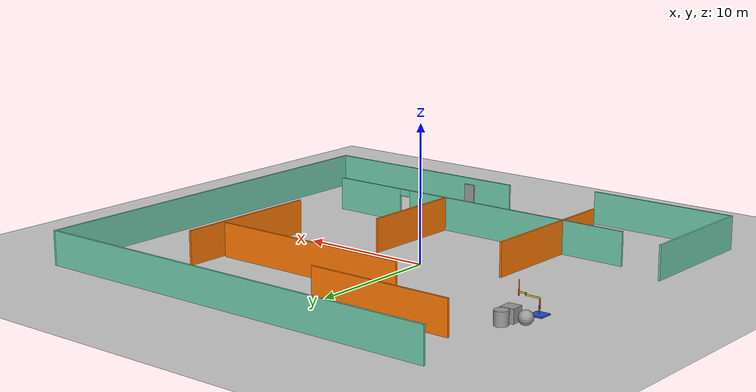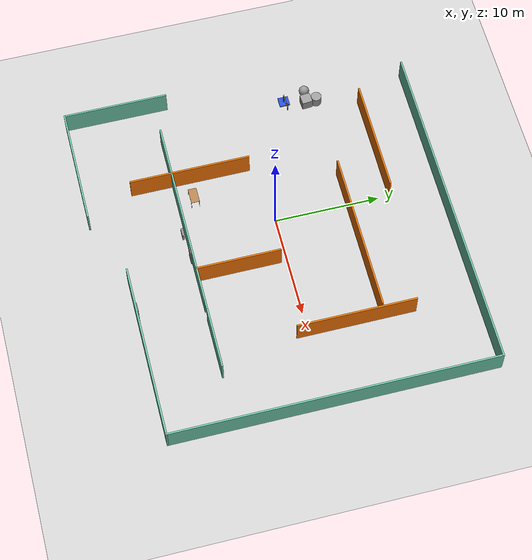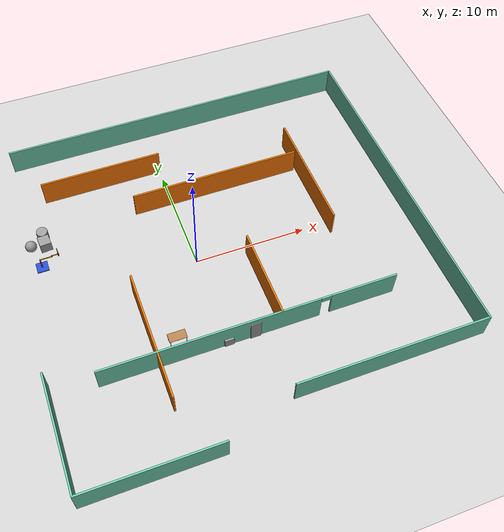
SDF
<sdf version="1.7">
 <world name="default">
  <light name="sun" type="directional">
   <pose>0 0 10 0 -0 0</pose>
   <diffuse>0.8 0.8 0.8 1</diffuse>
   <specular>0.2 0.2 0.2 1</specular>
   <attenuation>
    <range>1000</range>
    <constant>0.9</constant>
    <linear>0.01</linear>
    <quadratic>0.001</quadratic>
   </attenuation>
   <direction>-0.5 0.1 -0.9</direction>
   <spot><inner_angle>0</inner_angle><outer_angle>0</outer_angle><falloff>0</falloff></spot>
  </light>
  <model name="ground_plane">
   <static>1</static>
   <link name="link">
    <collision name="collision">
     <geometry><plane><normal>0 0 1</normal><size>100 100</size></plane></geometry>
     <surface><friction><ode><mu>100</mu><mu2>50</mu2></ode></friction></surface>
    </collision>
    <visual name="visual">
     <cast_shadows>0</cast_shadows>
     <geometry><plane><normal>0 0 1</normal><size>100 100</size></plane></geometry>
     <material>
      <script><uri>file://media/materials/scripts/gazebo.material</uri><name>Gazebo/Grey</name></script>
     </material>
    </visual>
   </link>
  </model>
  <gravity>0 0 -9.8</gravity>
  <magnetic_field>6e-06 2.3e-05 -4.2e-05</magnetic_field>
  <atmosphere type="adiabatic"/>
  <physics type="ode">
   <max_step_size>0.001</max_step_size>
   <real_time_factor>1</real_time_factor>
   <real_time_update_rate>1000</real_time_update_rate>
  </physics>
  <scene><ambient>0.4 0.4 0.4 1</ambient><background>0.7 0.7 0.7 1</background><shadows>1</shadows></scene>
  <audio><device>default</device></audio>
  <spherical_coordinates>
   <surface_model>EARTH_WGS84</surface_model>
   <latitude_deg>32.215470098666664</latitude_deg>
   <longitude_deg>119.50065134233334</longitude_deg>
   <elevation>488</elevation>
   <heading_deg>180</heading_deg>
  </spherical_coordinates>
  <model name="Untitled222">
   <pose>2.41059 -0.583412 0 0 -0 0</pose>
   <link name="Door_1">
    <collision name="Door_1_Collision">
     <geometry><box><size>0.9 0.17 2</size></box></geometry>
     <pose>0 0 1 0 -0 0</pose>
    </collision>
    <visual name="Door_1_Visual">
     <pose>0 0 1 0 -0 0</pose>
     <geometry><box><size>0.9 0.17 2</size></box></geometry>
     <material>
      <script><uri>file://media/materials/scripts/gazebo.material</uri><name>Gazebo/Grey</name></script>
     </material>
    </visual>
    <pose>4.24902 -14.0344 0 0 -0 0</pose>
   </link>
   <link name="Door_3">
    <collision name="Door_3_Collision">
     <geometry><box><size>0.9 0.17 2</size></box></geometry>
     <pose>0 0 1 0 -0 0</pose>
    </collision>
    <visual name="Door_3_Visual">
     <pose>0 0 1 0 -0 0</pose>
     <geometry><box><size>0.9 0.17 2</size></box></geometry>
     <material>
      <script><uri>file://media/materials/scripts/gazebo.material</uri><name>Gazebo/Grey</name></script>
     </material>
    </visual>
    <pose>-0.30773 -8.01293 0 0 -0 0</pose>
   </link>
   <link name="Wall_21">
    <collision name="Wall_21_Collision">
     <geometry><box><size>32.5 0.15 2.5</size></box></geometry>
     <pose>0 0 1.25 0 -0 0</pose>
    </collision>
    <visual name="Wall_21_Visual">
     <pose>0 0 1.25 0 -0 0</pose>
     <geometry><box><size>32.5 0.15 2.5</size></box></geometry>
     <material>
      <script><uri>file://media/materials/scripts/gazebo.material</uri><name>Gazebo/Grey</name></script>
      <ambient>0.435294 0.796078 0.67451 1</ambient>
     </material>
     <meta><layer>0</layer></meta>
    </visual>
    <pose>0.976447 16.4796 0 0 -0 0</pose>
   </link>
   <link name="Wall_22">
    <collision name="Wall_22_Collision">
     <geometry><box><size>30.75 0.15 2.5</size></box></geometry>
     <pose>0 0 1.25 0 -0 0</pose>
    </collision>
    <visual name="Wall_22_Visual">
     <pose>0 0 1.25 0 -0 0</pose>
     <geometry><box><size>30.75 0.15 2.5</size></box></geometry>
     <material>
      <script><uri>file://media/materials/scripts/gazebo.material</uri><name>Gazebo/Grey</name></script>
      <ambient>0.435294 0.796078 0.67451 1</ambient>
     </material>
     <meta><layer>0</layer></meta>
    </visual>
    <pose>17.1514 1.17963 0 0 -0 -1.5708</pose>
   </link>
   <link name="Wall_23">
    <collision name="Wall_23_Collision">
     <geometry><box><size>16.75 0.15 2.5</size></box></geometry>
     <pose>0 0 1.25 0 -0 0</pose>
    </collision>
    <visual name="Wall_23_Visual">
     <pose>0 0 1.25 0 -0 0</pose>
     <geometry><box><size>16.75 0.15 2.5</size></box></geometry>
     <material>
      <script><uri>file://media/materials/scripts/gazebo.material</uri><name>Gazebo/Grey</name></script>
      <ambient>0.435294 0.796078 0.67451 1</ambient>
     </material>
     <meta><layer>0</layer></meta>
    </visual>
    <pose>8.85145 -14.1204 0 0 -0 3.14159</pose>
   </link>
   <link name="Wall_25">
    <pose>-0.652029 -7.93156 0 0 -0 0</pose>
    <visual name="Wall_25_Visual_0">
     <pose>-3.37645 0 1.25 0 -0 0</pose>
     <geometry><box><size>18.7471 0.15 2.5</size></box></geometry>
     <material>
      <script><uri>file://media/materials/scripts/gazebo.material</uri><name>Gazebo/Grey</name></script>
      <ambient>0.435294 0.796078 0.67451 1</ambient>
     </material>
     <meta><layer>0</layer></meta>
    </visual>
    <collision name="Wall_25_Collision_0">
     <geometry><box><size>18.7471 0.15 2.5</size></box></geometry>
     <pose>-3.37645 0 1.25 0 -0 0</pose>
    </collision>
    <visual name="Wall_25_Visual_1">
     <pose>9.82355 0 1.25 0 -0 0</pose>
     <geometry><box><size>5.8529 0.15 2.5</size></box></geometry>
     <material>
      <script><uri>file://media/materials/scripts/gazebo.material</uri><name>Gazebo/Grey</name></script>
      <ambient>0.435294 0.796078 0.67451 1</ambient>
     </material>
     <meta><layer>0</layer></meta>
    </visual>
    <collision name="Wall_25_Collision_1">
     <geometry><box><size>5.8529 0.15 2.5</size></box></geometry>
     <pose>9.82355 0 1.25 0 -0 0</pose>
    </collision>
    <visual name="Wall_25_Visual_2">
     <pose>6.4471 0 2.25 0 -0 0</pose>
     <geometry><box><size>0.9 0.15 0.5</size></box></geometry>
     <material>
      <script><uri>file://media/materials/scripts/gazebo.material</uri><name>Gazebo/Grey</name></script>
      <ambient>0.435294 0.796078 0.67451 1</ambient>
     </material>
     <meta><layer>0</layer></meta>
    </visual>
    <collision name="Wall_25_Collision_2">
     <geometry><box><size>0.9 0.15 0.5</size></box></geometry>
     <pose>6.4471 0 2.25 0 -0 0</pose>
    </collision>
   </link>
   <link name="Wall_27">
    <collision name="Wall_27_Collision">
     <geometry><box><size>8 0.15 2.5</size></box></geometry>
     <pose>0 0 1.25 0 -0 0</pose>
    </collision>
    <visual name="Wall_27_Visual">
     <pose>0 0 1.25 0 -0 0</pose>
     <geometry><box><size>8 0.15 2.5</size></box></geometry>
     <material>
      <script><uri>file://media/materials/scripts/gazebo.material</uri><name>Gazebo/Grey</name></script>
      <ambient>0.996078 0.47451 0.0196078 1</ambient>
     </material>
     <meta><layer>0</layer></meta>
    </visual>
    <pose>1.97065 -3.96361 0 0 -0 -1.5708</pose>
   </link>
   <link name="Wall_29">
    <collision name="Wall_29_Collision">
     <geometry><box><size>11.5 0.15 2.5</size></box></geometry>
     <pose>0 0 1.25 0 -0 0</pose>
    </collision>
    <visual name="Wall_29_Visual">
     <pose>0 0 1.25 0 -0 0</pose>
     <geometry><box><size>11.5 0.15 2.5</size></box></geometry>
     <material>
      <script><uri>file://media/materials/scripts/gazebo.material</uri><name>Gazebo/Grey</name></script>
      <ambient>0.996078 0.47451 0.0196078 1</ambient>
     </material>
     <meta><layer>0</layer></meta>
    </visual>
    <pose>-8.44479 -6.20183 0 0 -0 -1.5708</pose>
   </link>
   <link name="Wall_31">
    <collision name="Wall_31_Collision">
     <geometry><box><size>10 0.15 2.5</size></box></geometry>
     <pose>0 0 1.25 0 -0 0</pose>
    </collision>
    <visual name="Wall_31_Visual">
     <pose>0 0 1.25 0 -0 0</pose>
     <geometry><box><size>10 0.15 2.5</size></box></geometry>
     <material>
      <script><uri>file://media/materials/scripts/gazebo.material</uri><name>Gazebo/Grey</name></script>
      <ambient>0.435294 0.796078 0.67451 1</ambient>
     </material>
     <meta><layer>0</layer></meta>
    </visual>
    <pose>-17.1514 -11.5546 0 0 -0 -1.5708</pose>
   </link>
   <link name="Wall_32">
    <collision name="Wall_32_Collision">
     <geometry><box><size>11.5 0.15 2.5</size></box></geometry>
     <pose>0 0 1.25 0 -0 0</pose>
    </collision>
    <visual name="Wall_32_Visual">
     <pose>0 0 1.25 0 -0 0</pose>
     <geometry><box><size>11.5 0.15 2.5</size></box></geometry>
     <material>
      <script><uri>file://media/materials/scripts/gazebo.material</uri><name>Gazebo/Grey</name></script>
      <ambient>0.435294 0.796078 0.67451 1</ambient>
     </material>
     <meta><layer>0</layer></meta>
    </visual>
    <pose>-11.4764 -16.4796 0 0 -0 0</pose>
   </link>
   <link name="Wall_34">
    <collision name="Wall_34_Collision">
     <geometry><box><size>11 0.15 2.5</size></box></geometry>
     <pose>0 0 1.25 0 -0 0</pose>
    </collision>
    <visual name="Wall_34_Visual">
     <pose>0 0 1.25 0 -0 0</pose>
     <geometry><box><size>11 0.15 2.5</size></box></geometry>
     <material>
      <script><uri>file://media/materials/scripts/gazebo.material</uri><name>Gazebo/Grey</name></script>
      <ambient>0.996078 0.47451 0.0196078 1</ambient>
     </material>
     <meta><layer>0</layer></meta>
    </visual>
    <pose>-7.82066 11.6788 0 0 -0 0</pose>
   </link>
   <link name="Wall_36">
    <collision name="Wall_36_Collision">
     <geometry><box><size>15.5 0.15 2.5</size></box></geometry>
     <pose>0 0 1.25 0 -0 0</pose>
    </collision>
    <visual name="Wall_36_Visual">
     <pose>0 0 1.25 0 -0 0</pose>
     <geometry><box><size>15.5 0.15 2.5</size></box></geometry>
     <material>
      <script><uri>file://media/materials/scripts/gazebo.material</uri><name>Gazebo/Grey</name></script>
      <ambient>0.996078 0.47451 0.0196078 1</ambient>
     </material>
     <meta><layer>0</layer></meta>
    </visual>
    <pose>1.83407 7.52886 0 0 -0 0</pose>
   </link>
   <link name="Wall_38">
    <collision name="Wall_38_Collision">
     <geometry><box><size>11.25 0.15 2.5</size></box></geometry>
     <pose>0 0 1.25 0 -0 0</pose>
    </collision>
    <visual name="Wall_38_Visual">
     <pose>0 0 1.25 0 -0 0</pose>
     <geometry><box><size>11.25 0.15 2.5</size></box></geometry>
     <material>
      <script><uri>file://media/materials/scripts/gazebo.material</uri><name>Gazebo/Grey</name></script>
      <ambient>0.996078 0.47451 0.0196078 1</ambient>
     </material>
     <meta><layer>0</layer></meta>
    </visual>
    <pose>9.8636 5.07094 0 0 -0 -1.5708</pose>
   </link>
   <link name="Window_2">
    <collision name="Window_2_Collision">
     <geometry><box><size>0.8 0.17 0.8</size></box></geometry>
     <pose>0 0 0.4 0 -0 0</pose>
    </collision>
    <visual name="Window_2_Visual">
     <pose>0 0 0.4 0 -0 0</pose>
     <geometry><box><size>0.8 0.17 0.8</size></box></geometry>
     <material>
      <script><uri>file://media/materials/scripts/gazebo.material</uri><name>Gazebo/Grey</name></script>
     </material>
    </visual>
    <pose>-2.66748 -8.25704 0.5 0 -0 0</pose>
   </link>
   <static>1</static>
  </model>
  <model name="unit_cylinder">
   <pose>-11.9768 7.13366 0.499992 -3e-06 -4e-06 0.013015</pose>
   <link name="link">
    <inertial>
     <mass>1</mass>
     <inertia><ixx>0.145833</ixx><ixy>0</ixy><ixz>0</ixz><iyy>0.145833</iyy><iyz>0</iyz><izz>0.125</izz></inertia>
    </inertial>
    <collision name="collision">
     <geometry><cylinder><radius>0.5</radius><length>1</length></cylinder></geometry>
    </collision>
    <visual name="visual">
     <geometry><cylinder><radius>0.5</radius><length>1</length></cylinder></geometry>
     <material>
      <script><name>Gazebo/Grey</name><uri>file://media/materials/scripts/gazebo.material</uri></script>
     </material>
    </visual>
   </link>
  </model>
  <model name="unit_sphere">
   <pose>-13.2033 6.23711 0.5 0 -0 0</pose>
   <link name="link">
    <inertial>
     <mass>1</mass>
     <inertia><ixx>0.1</ixx><ixy>0</ixy><ixz>0</ixz><iyy>0.1</iyy><iyz>0</iyz><izz>0.1</izz></inertia>
    </inertial>
    <collision name="collision"><geometry><sphere><radius>0.5</radius></sphere></geometry></collision>
    <visual name="visual">
     <geometry><sphere><radius>0.5</radius></sphere></geometry>
     <material>
      <script><name>Gazebo/Grey</name><uri>file://media/materials/scripts/gazebo.material</uri></script>
     </material>
    </visual>
   </link>
  </model>
  <model name="unit_box">
   <pose>-11.9904 6.12986 0.5 0 -0 0.073842</pose>
   <link name="link">
    <inertial>
     <mass>1</mass>
     <inertia>
      <ixx>0.166667</ixx>
      <ixy>0</ixy>
      <ixz>0</ixz>
      <iyy>0.166667</iyy>
      <iyz>0</iyz>
      <izz>0.166667</izz>
     </inertia>
    </inertial>
    <collision name="collision"><geometry><box><size>1 1 1</size></box></geometry></collision>
    <visual name="visual">
     <geometry><box><size>1 1 1</size></box></geometry>
     <material>
      <script><name>Gazebo/Grey</name><uri>file://media/materials/scripts/gazebo.material</uri></script>
     </material>
    </visual>
   </link>
  </model>
  <model name="simple_arm">
   <link name="arm_base">
    <inertial>
     <pose>0 0 0.00099 0 -0 0</pose>
     <inertia><ixx>1.11</ixx><ixy>0</ixy><ixz>0</ixz><iyy>100.11</iyy><iyz>0</iyz><izz>1.01</izz></inertia>
     <mass>101</mass>
    </inertial>
    <collision name="arm_base_geom">
     <pose>0 0 0.05 0 -0 0</pose>
     <geometry><box><size>1 1 0.1</size></box></geometry>
    </collision>
    <visual name="arm_base_geom_visual">
     <pose>0 0 0.05 0 -0 0</pose>
     <geometry><box><size>1 1 0.1</size></box></geometry>
     <material>
      <script><uri>file://media/materials/scripts/gazebo.material</uri><name>Gazebo/Blue</name></script>
     </material>
    </visual>
    <collision name="arm_base_geom_arm_trunk">
     <pose>0 0 0.6 0 -0 0</pose>
     <geometry><cylinder><radius>0.05</radius><length>1</length></cylinder></geometry>
    </collision>
    <visual name="arm_base_geom_arm_trunk_visual">
     <pose>0 0 0.6 0 -0 0</pose>
     <geometry><cylinder><radius>0.05</radius><length>1</length></cylinder></geometry>
     <material>
      <script><uri>file://media/materials/scripts/gazebo.material</uri><name>Gazebo/Red</name></script>
     </material>
    </visual>
   </link>
   <link name="arm_shoulder_pan">
    <pose>0 0 1.1 0 -0 0</pose>
    <inertial>
     <pose>0.045455 0 0 0 -0 0</pose>
     <inertia><ixx>0.011</ixx><ixy>0</ixy><ixz>0</ixz><iyy>0.0225</iyy><iyz>0</iyz><izz>0.0135</izz></inertia>
     <mass>1.1</mass>
    </inertial>
    <collision name="arm_shoulder_pan_geom">
     <pose>0 0 0.05 0 -0 0</pose>
     <geometry><cylinder><radius>0.05</radius><length>0.1</length></cylinder></geometry>
    </collision>
    <visual name="arm_shoulder_pan_geom_visual">
     <pose>0 0 0.05 0 -0 0</pose>
     <geometry><cylinder><radius>0.05</radius><length>0.1</length></cylinder></geometry>
     <material>
      <script><uri>file://media/materials/scripts/gazebo.material</uri><name>Gazebo/Yellow</name></script>
     </material>
    </visual>
    <collision name="arm_shoulder_pan_geom_arm_shoulder">
     <pose>0.55 0 0.05 0 -0 0</pose>
     <geometry><box><size>1 0.05 0.1</size></box></geometry>
    </collision>
    <visual name="arm_shoulder_pan_geom_arm_shoulder_visual">
     <pose>0.55 0 0.05 0 -0 0</pose>
     <geometry><box><size>1 0.05 0.1</size></box></geometry>
     <material>
      <script><uri>file://media/materials/scripts/gazebo.material</uri><name>Gazebo/Yellow</name></script>
     </material>
    </visual>
   </link>
   <link name="arm_elbow_pan">
    <pose>1.05 0 1.1 0 -0 0</pose>
    <inertial>
     <pose>0.0875 0 0.083333 0 -0 0</pose>
     <inertia>
      <ixx>0.031</ixx>
      <ixy>0</ixy>
      <ixz>0.005</ixz>
      <iyy>0.07275</iyy>
      <iyz>0</iyz>
      <izz>0.04475</izz>
     </inertia>
     <mass>1.2</mass>
    </inertial>
    <collision name="arm_elbow_pan_geom">
     <pose>0 0 0.1 0 -0 0</pose>
     <geometry><cylinder><radius>0.05</radius><length>0.2</length></cylinder></geometry>
    </collision>
    <visual name="arm_elbow_pan_geom_visual">
     <pose>0 0 0.1 0 -0 0</pose>
     <geometry><cylinder><radius>0.05</radius><length>0.2</length></cylinder></geometry>
     <material>
      <script><uri>file://media/materials/scripts/gazebo.material</uri><name>Gazebo/Red</name></script>
     </material>
    </visual>
    <collision name="arm_elbow_pan_geom_arm_elbow">
     <pose>0.3 0 0.15 0 -0 0</pose>
     <geometry><box><size>0.5 0.03 0.1</size></box></geometry>
    </collision>
    <visual name="arm_elbow_pan_geom_arm_elbow_visual">
     <pose>0.3 0 0.15 0 -0 0</pose>
     <geometry><box><size>0.5 0.03 0.1</size></box></geometry>
     <material>
      <script><uri>file://media/materials/scripts/gazebo.material</uri><name>Gazebo/Yellow</name></script>
     </material>
    </visual>
    <collision name="arm_elbow_pan_geom_arm_wrist">
     <pose>0.55 0 0.15 0 -0 0</pose>
     <geometry><cylinder><radius>0.05</radius><length>0.3</length></cylinder></geometry>
    </collision>
    <visual name="arm_elbow_pan_geom_arm_wrist_visual">
     <pose>0.55 0 0.15 0 -0 0</pose>
     <geometry><cylinder><radius>0.05</radius><length>0.3</length></cylinder></geometry>
     <material>
      <script><uri>file://media/materials/scripts/gazebo.material</uri><name>Gazebo/Red</name></script>
     </material>
    </visual>
   </link>
   <link name="arm_wrist_lift">
    <pose>1.6 0 1.05 0 -0 0</pose>
    <inertial>
     <inertia><ixx>0.01</ixx><ixy>0</ixy><ixz>0</ixz><iyy>0.01</iyy><iyz>0</iyz><izz>0.001</izz></inertia>
     <mass>0.1</mass>
    </inertial>
    <collision name="arm_wrist_lift_geom">
     <pose>0 0 0.5 0 -0 0</pose>
     <geometry><cylinder><radius>0.03</radius><length>1</length></cylinder></geometry>
    </collision>
    <visual name="arm_wrist_lift_geom_visual">
     <pose>0 0 0.5 0 -0 0</pose>
     <geometry><cylinder><radius>0.03</radius><length>1</length></cylinder></geometry>
     <material>
      <script><uri>file://media/materials/scripts/gazebo.material</uri><name>Gazebo/Yellow</name></script>
     </material>
    </visual>
   </link>
   <link name="arm_wrist_roll">
    <pose>1.6 0 1 0 -0 0</pose>
    <inertial>
     <inertia><ixx>0.01</ixx><ixy>0</ixy><ixz>0</ixz><iyy>0.01</iyy><iyz>0</iyz><izz>0.001</izz></inertia>
     <mass>0.1</mass>
    </inertial>
    <collision name="arm_wrist_roll_geom">
     <pose>0 0 0.025 0 -0 0</pose>
     <geometry><cylinder><radius>0.05</radius><length>0.05</length></cylinder></geometry>
    </collision>
    <visual name="arm_wrist_roll_geom_visual">
     <pose>0 0 0.025 0 -0 0</pose>
     <geometry><cylinder><radius>0.05</radius><length>0.05</length></cylinder></geometry>
     <material>
      <script><uri>file://media/materials/scripts/gazebo.material</uri><name>Gazebo/Red</name></script>
     </material>
    </visual>
   </link>
   <joint name="arm_shoulder_pan_joint" type="revolute">
    <parent>arm_base</parent>
    <child>arm_shoulder_pan</child>
    <axis>
     <dynamics>
      <damping>1</damping>
      <friction>0</friction>
      <spring_reference>0</spring_reference>
      <spring_stiffness>0</spring_stiffness>
     </dynamics>
     <xyz expressed_in="__model__">0 0 1</xyz>
     <limit><lower>-1e+16</lower><upper>1e+16</upper></limit>
    </axis>
   </joint>
   <joint name="arm_elbow_pan_joint" type="revolute">
    <parent>arm_shoulder_pan</parent>
    <child>arm_elbow_pan</child>
    <axis>
     <dynamics>
      <damping>1</damping>
      <friction>0</friction>
      <spring_reference>0</spring_reference>
      <spring_stiffness>0</spring_stiffness>
     </dynamics>
     <xyz expressed_in="__model__">0 0 1</xyz>
     <limit><lower>-1e+16</lower><upper>1e+16</upper></limit>
    </axis>
   </joint>
   <joint name="arm_wrist_lift_joint" type="prismatic">
    <parent>arm_elbow_pan</parent>
    <child>arm_wrist_lift</child>
    <axis>
     <dynamics>
      <damping>1</damping>
      <friction>0</friction>
      <spring_reference>0</spring_reference>
      <spring_stiffness>0</spring_stiffness>
     </dynamics>
     <limit><lower>-0.8</lower><upper>0.1</upper></limit>
     <xyz expressed_in="__model__">0 0 1</xyz>
    </axis>
   </joint>
   <joint name="arm_wrist_roll_joint" type="revolute">
    <parent>arm_wrist_lift</parent>
    <child>arm_wrist_roll</child>
    <axis>
     <dynamics>
      <damping>1</damping>
      <friction>0</friction>
      <spring_reference>0</spring_reference>
      <spring_stiffness>0</spring_stiffness>
     </dynamics>
     <limit><lower>-2.99999</lower><upper>2.99999</upper></limit>
     <xyz expressed_in="__model__">0 0 1</xyz>
    </axis>
   </joint>
   <pose>-12.7411 4.07911 -0 0 0 -0.001314</pose>
  </model>
  <model name="table">
   <static>1</static>
   <link name="link">
    <collision name="surface">
     <pose>0 0 1 0 -0 0</pose>
     <geometry><box><size>1.5 0.8 0.03</size></box></geometry>
     <surface><friction><ode><mu>0.6</mu><mu2>0.6</mu2></ode></friction></surface>
    </collision>
    <visual name="visual1">
     <pose>0 0 1 0 -0 0</pose>
     <geometry><box><size>1.5 0.8 0.03</size></box></geometry>
     <material>
      <script><uri>file://media/materials/scripts/gazebo.material</uri><name>Gazebo/Wood</name></script>
     </material>
    </visual>
    <collision name="front_left_leg">
     <pose>0.68 0.38 0.5 0 -0 0</pose>
     <geometry><cylinder><radius>0.02</radius><length>1</length></cylinder></geometry>
    </collision>
    <visual name="front_left_leg1">
     <pose>0.68 0.38 0.5 0 -0 0</pose>
     <geometry><cylinder><radius>0.02</radius><length>1</length></cylinder></geometry>
     <material>
      <script><uri>file://media/materials/scripts/gazebo.material</uri><name>Gazebo/Grey</name></script>
     </material>
    </visual>
    <collision name="front_right_leg">
     <pose>0.68 -0.38 0.5 0 -0 0</pose>
     <geometry><cylinder><radius>0.02</radius><length>1</length></cylinder></geometry>
    </collision>
    <visual name="front_right_leg1">
     <pose>0.68 -0.38 0.5 0 -0 0</pose>
     <geometry><cylinder><radius>0.02</radius><length>1</length></cylinder></geometry>
     <material>
      <script><uri>file://media/materials/scripts/gazebo.material</uri><name>Gazebo/Grey</name></script>
     </material>
    </visual>
    <collision name="back_right_leg">
     <pose>-0.68 -0.38 0.5 0 -0 0</pose>
     <geometry><cylinder><radius>0.02</radius><length>1</length></cylinder></geometry>
    </collision>
    <visual name="back_right_leg1">
     <pose>-0.68 -0.38 0.5 0 -0 0</pose>
     <geometry><cylinder><radius>0.02</radius><length>1</length></cylinder></geometry>
     <material>
      <script><uri>file://media/materials/scripts/gazebo.material</uri><name>Gazebo/Grey</name></script>
     </material>
    </visual>
    <collision name="back_left_leg">
     <pose>-0.68 0.38 0.5 0 -0 0</pose>
     <geometry><cylinder><radius>0.02</radius><length>1</length></cylinder></geometry>
    </collision>
    <visual name="back_left_leg1">
     <pose>-0.68 0.38 0.5 0 -0 0</pose>
     <geometry><cylinder><radius>0.02</radius><length>1</length></cylinder></geometry>
     <material>
      <script><uri>file://media/materials/scripts/gazebo.material</uri><name>Gazebo/Grey</name></script>
     </material>
    </visual>
   </link>
   <pose>-4.00101 -6.91637 0 0 -0 0</pose>
  </model>
 </world>
</sdf>
